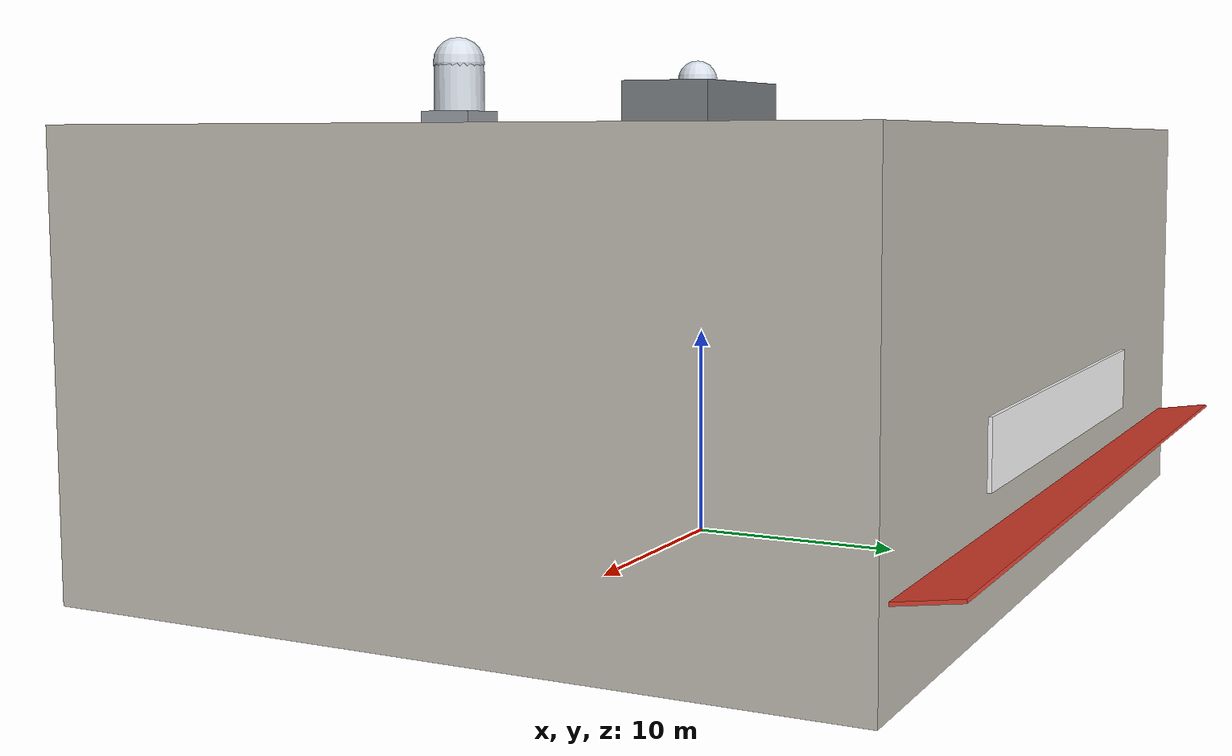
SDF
<?xml version="1.0" ?>
<sdf version="1.8">
  <model name="guandong_civic_market">
    <static>true</static>
    <link name="market_link">
      <collision name="podium_col">
        <pose>0 0 10.0 0 0 0</pose>
        <geometry><box><size>48.0 36.0 20.0</size></box></geometry>
      </collision>

      <!-- 關東市場主體結構 (4F 複合式公有市場與客家文化會館) -->
      <visual name="market_main">
        <pose>0 0 10.0 0 0 0</pose>
        <geometry><box><size>48.0 36.0 20.0</size></box></geometry>
        <material>
          <ambient>0.68 0.66 0.62 1</ambient>
          <diffuse>0.76 0.74 0.70 1</diffuse>
          <specular>0.3 0.3 0.3 1</specular>
        </material>
      </visual>

      <!-- ==================== 關東公有零售市場 台灣特色高清擬真主體與店招 (Photo-Real PBR) ==================== -->
      <!-- 正門上方超大型發光主招牌 (Civic Market Marquee Sign: 24.0m x 3.0m, 比例 8:1 完全吻合 1600x200 貼圖) -->
      <visual name="market_sign_vis">
        <pose>0 18.20 7.2 0 0 0</pose>
        <geometry><box><size>24.0 0.18 3.0</size></box></geometry>
        <material>
          <diffuse>1 1 1 1</diffuse>
          <emissive>0.45 0.45 0.45 1</emissive>
          <pbr>
            <metal>
              <albedo_map>model://guandong_civic_market/materials/textures/guandong_market_sign.png</albedo_map>
              <roughness>0.20</roughness>
              <metalness>0.05</metalness>
            </metal>
          </pbr>
        </material>
      </visual>

      <!-- 傳統早市 1F 延伸遮雨遮陽棚 (Market Stall Extended Canopy: 延伸 2.5m) -->
      <visual name="market_morning_canopy">
        <pose>0 19.3 4.2 0.15 0 0</pose>
        <geometry><box><size>46.0 2.8 0.15</size></box></geometry>
        <material>
          <ambient>0.8 0.2 0.15 1</ambient>
          <diffuse>0.9 0.25 0.18 1</diffuse>
        </material>
      </visual>

      <!-- ==================== 台灣特色天際線：公有建築頂樓大型白鐵水塔雙組 ==================== -->
      <!-- 水塔 1 -->
      <visual name="water_tank_1_stand">
        <pose>-12.0 -6.0 20.4 0 0 0</pose>
        <geometry><box><size>2.4 2.4 0.5</size></box></geometry>
        <material><ambient>0.5 0.52 0.55 1</ambient><diffuse>0.6 0.62 0.65 1</diffuse></material>
      </visual>
      <visual name="water_tank_1_body">
        <pose>-12.0 -6.0 21.6 0 0 0</pose>
        <geometry><cylinder><radius>1.1</radius><length>2.2</length></cylinder></geometry>
        <material>
          <ambient>0.75 0.78 0.82 1</ambient>
          <diffuse>0.85 0.88 0.92 1</diffuse>
          <pbr><metal><roughness>0.15</roughness><metalness>0.92</metalness></metal></pbr>
        </material>
      </visual>
      <visual name="water_tank_1_dome">
        <pose>-12.0 -6.0 22.75 0 0 0</pose>
        <geometry><sphere><radius>1.12</radius></sphere></geometry>
        <material>
          <ambient>0.75 0.78 0.82 1</ambient>
          <diffuse>0.85 0.88 0.92 1</diffuse>
          <pbr><metal><roughness>0.15</roughness><metalness>0.92</metalness></metal></pbr>
        </material>
      </visual>

      <!-- 水塔 2 -->
      <visual name="water_tank_2_stand">
        <pose>12.0 -6.0 20.4 0 0 0</pose>
        <geometry><box><size>2.4 2.4 0.5</size></box></geometry>
        <material><ambient>0.5 0.52 0.55 1</ambient><diffuse>0.6 0.62 0.65 1</diffuse></material>
      </visual>
      <visual name="water_tank_2_body">
        <pose>12.0 -6.0 21.6 0 0 0</pose>
        <geometry><cylinder><radius>1.1</radius><length>2.2</length></cylinder></geometry>
        <material>
          <ambient>0.75 0.78 0.82 1</ambient>
          <diffuse>0.85 0.88 0.92 1</diffuse>
          <pbr><metal><roughness>0.15</roughness><metalness>0.92</metalness></metal></pbr>
        </material>
      </visual>
      <visual name="water_tank_2_dome">
        <pose>12.0 -6.0 22.75 0 0 0</pose>
        <geometry><sphere><radius>1.12</radius></sphere></geometry>
        <material>
          <ambient>0.75 0.78 0.82 1</ambient>
          <diffuse>0.85 0.88 0.92 1</diffuse>
          <pbr><metal><roughness>0.15</roughness><metalness>0.92</metalness></metal></pbr>
        </material>
      </visual>

      <!-- 屋頂中央空調冰水主機 (Rooftop HVAC Chiller) -->
      <visual name="rooftop_chiller">
        <pose>0 0 21.2 0 0 0</pose>
        <geometry><box><size>8.0 4.5 2.0</size></box></geometry>
        <material><ambient>0.4 0.42 0.45 1</ambient><diffuse>0.48 0.50 0.52 1</diffuse></material>
      </visual>

    </link>
  </model>
</sdf>
